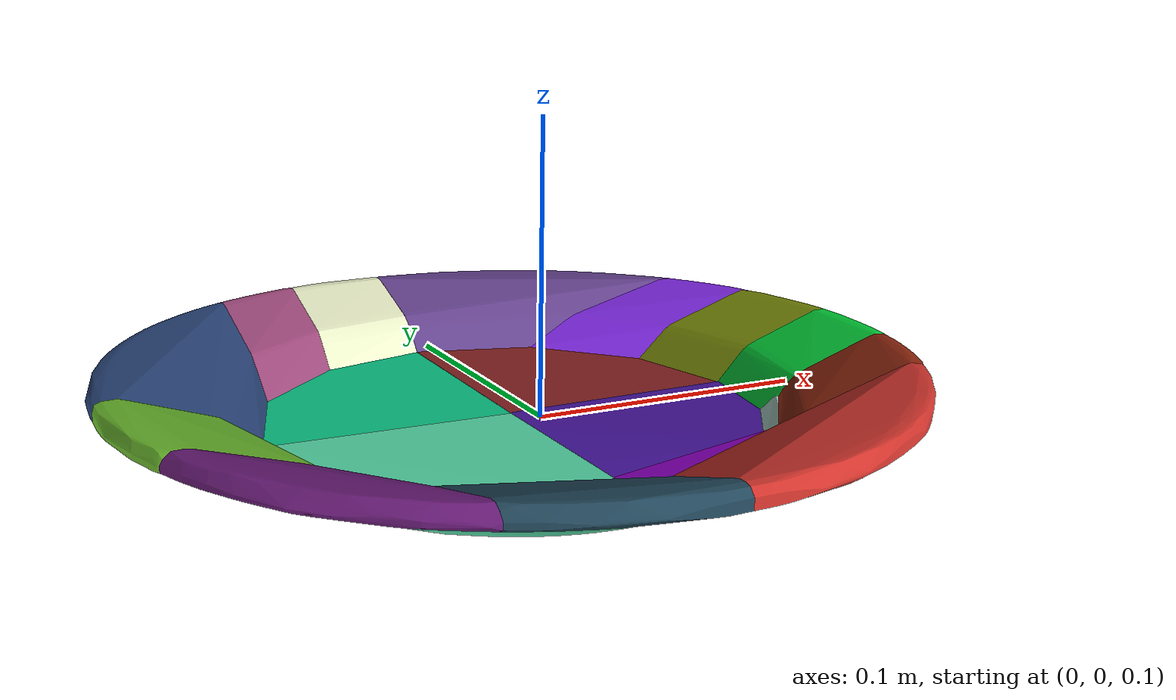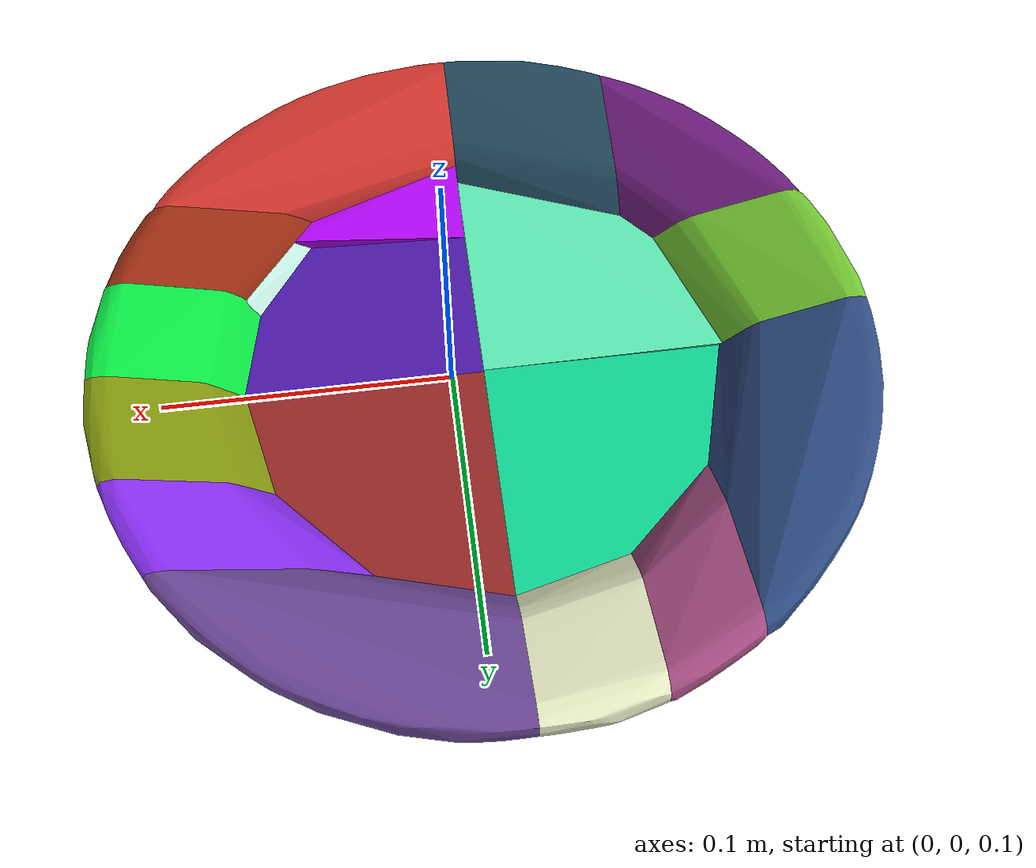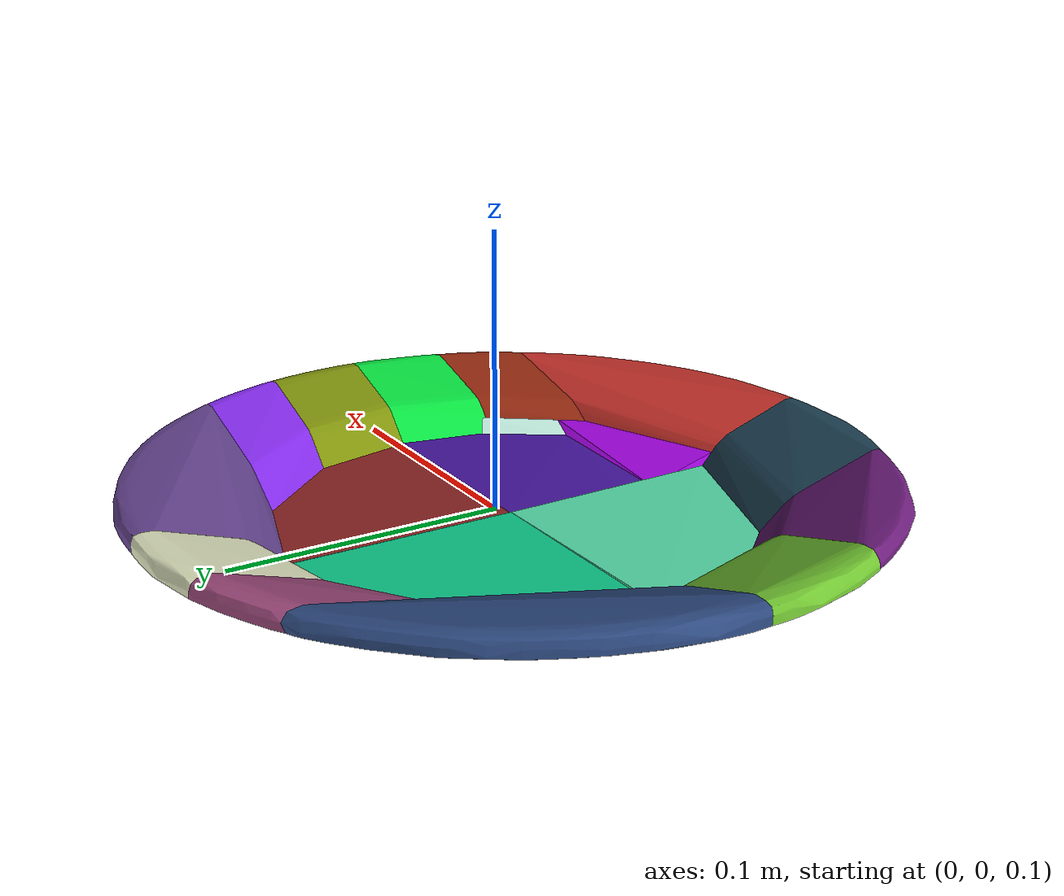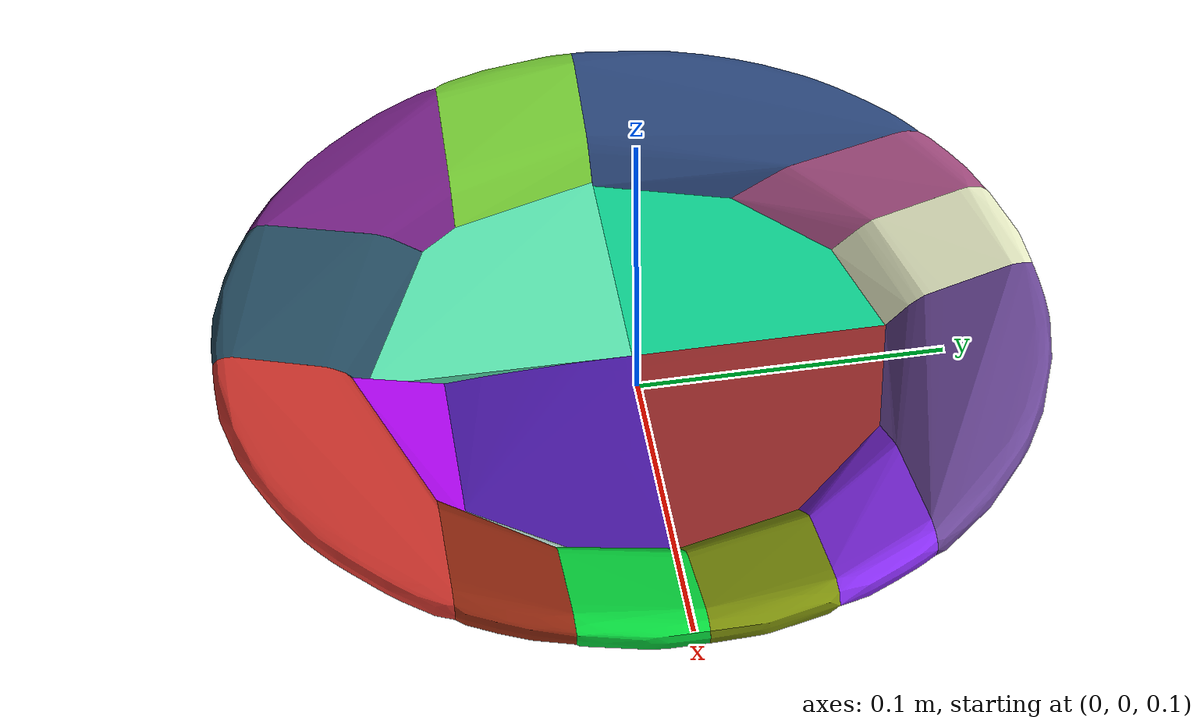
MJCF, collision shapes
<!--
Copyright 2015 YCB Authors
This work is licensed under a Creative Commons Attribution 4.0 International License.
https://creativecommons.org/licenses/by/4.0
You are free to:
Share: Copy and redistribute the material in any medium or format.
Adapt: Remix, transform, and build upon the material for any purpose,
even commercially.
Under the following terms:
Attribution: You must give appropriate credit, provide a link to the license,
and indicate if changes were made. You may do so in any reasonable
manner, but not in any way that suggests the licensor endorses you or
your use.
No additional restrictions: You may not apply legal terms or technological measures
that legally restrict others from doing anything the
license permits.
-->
<mujoco model="029_plate">
  <compiler meshdir="meshes" texturedir="materials"/>

  <asset>
    <texture type="2d" name="texture" file="texture_map.png"/>
    <material name="texture" texture="texture"/>

    <mesh file="textured.obj"/>
    <mesh file="coacd_part_000.obj"/>
    <mesh file="coacd_part_001.obj"/>
    <mesh file="coacd_part_002.obj"/>
    <mesh file="coacd_part_003.obj"/>
    <mesh file="coacd_part_004.obj"/>
    <mesh file="coacd_part_005.obj"/>
    <mesh file="coacd_part_006.obj"/>
    <mesh file="coacd_part_007.obj"/>
    <mesh file="coacd_part_008.obj"/>
    <mesh file="coacd_part_009.obj"/>
    <mesh file="coacd_part_010.obj"/>
    <mesh file="coacd_part_011.obj"/>
    <mesh file="coacd_part_012.obj"/>
    <mesh file="coacd_part_013.obj"/>
    <mesh file="coacd_part_014.obj"/>
    <mesh file="coacd_part_015.obj"/>
    <mesh file="coacd_part_016.obj"/>
    <mesh file="coacd_part_017.obj"/>
  </asset>

  <default>
    <default class="029_plate">
      <default class="visual_029_plate">
        <geom type="mesh" group="2" density="200" contype="0" conaffinity="0" material="texture"/>
      </default>
      <default class="collision_029_plate">
        <geom type="mesh" group="3" mass="0" density="0" solref=".004 1" friction="1.0 0.01 0.01" condim="6"/>
      </default>
    </default>
  </default>

  <worldbody>
    <body childclass="029_plate" pos="0 0 0.1">
      <freejoint/>
      <geom class="visual_029_plate" mesh="textured"/>
      <geom class="collision_029_plate" mesh="coacd_part_000" rgba="0.375 0.95 0.73 1"/>
      <geom class="collision_029_plate" mesh="coacd_part_001" rgba="0.599 0.16 0.16 1"/>
      <geom class="collision_029_plate" mesh="coacd_part_002" rgba="0.058 0.87 0.60 1"/>
      <geom class="collision_029_plate" mesh="coacd_part_003" rgba="0.708 0.02 0.97 1"/>
      <geom class="collision_029_plate" mesh="coacd_part_004" rgba="0.832 0.21 0.18 1"/>
      <geom class="collision_029_plate" mesh="coacd_part_005" rgba="0.183 0.30 0.52 1"/>
      <geom class="collision_029_plate" mesh="coacd_part_006" rgba="0.432 0.29 0.61 1"/>
      <geom class="collision_029_plate" mesh="coacd_part_007" rgba="0.139 0.29 0.37 1"/>
      <geom class="collision_029_plate" mesh="coacd_part_008" rgba="0.456 0.79 0.20 1"/>
      <geom class="collision_029_plate" mesh="coacd_part_009" rgba="0.514 0.59 0.05 1"/>
      <geom class="collision_029_plate" mesh="coacd_part_010" rgba="0.608 0.17 0.07 1"/>
      <geom class="collision_029_plate" mesh="coacd_part_011" rgba="0.949 0.97 0.81 1"/>
      <geom class="collision_029_plate" mesh="coacd_part_012" rgba="0.305 0.10 0.68 1"/>
      <geom class="collision_029_plate" mesh="coacd_part_013" rgba="0.440 0.12 0.50 1"/>
      <geom class="collision_029_plate" mesh="coacd_part_014" rgba="0.034 0.91 0.26 1"/>
      <geom class="collision_029_plate" mesh="coacd_part_015" rgba="0.663 0.31 0.52 1"/>
      <geom class="collision_029_plate" mesh="coacd_part_016" rgba="0.547 0.18 0.97 1"/>
      <geom class="collision_029_plate" mesh="coacd_part_017" rgba="0.775 0.94 0.89 1"/>
    </body>
  </worldbody>
</mujoco>
